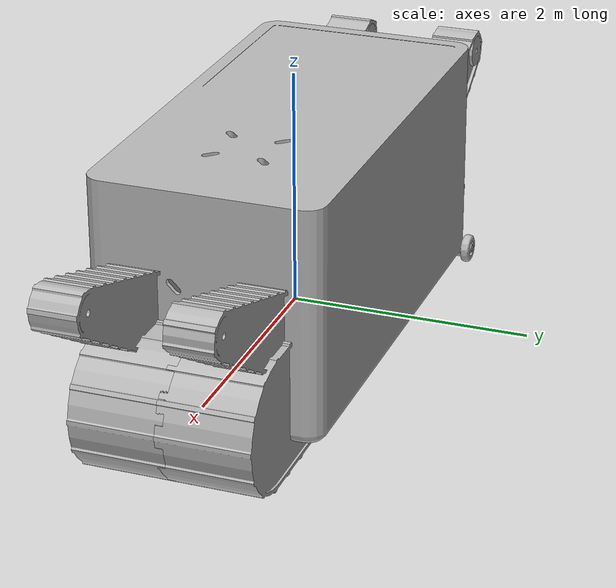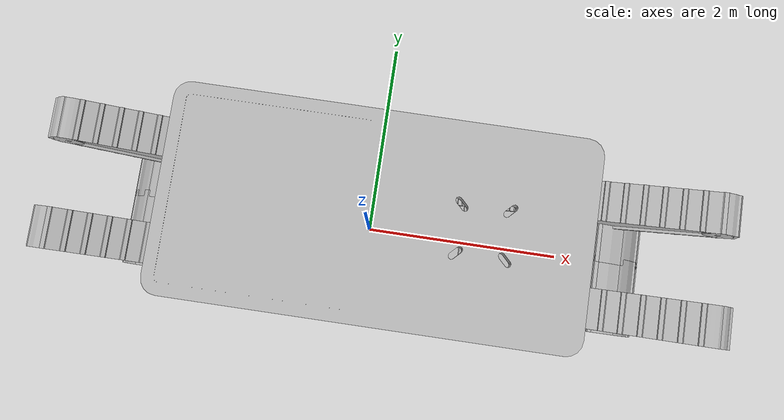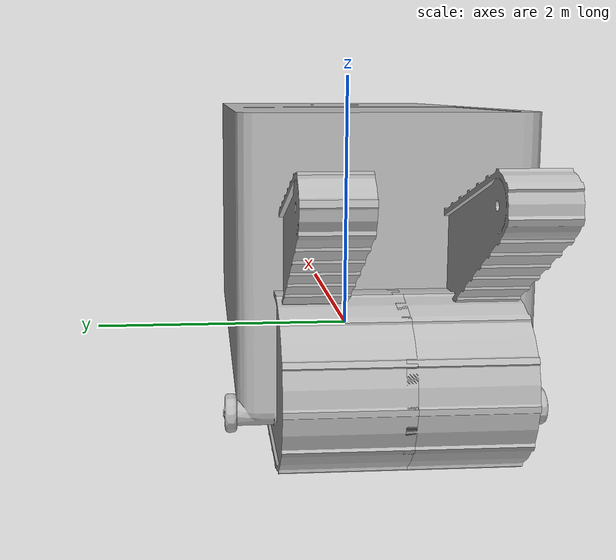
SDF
<?xml version='1.0'?>
<sdf version="1.4">
	<model name="sherpa_rover">
		<pose>0.0 0.0 0.0 0.0 0.0 0.0</pose>
		<static>false</static>
		<link name="main_body">
			<pose>0.0 0.0 0.0 0.0 0.0 0.0</pose>
			<visual name="Arm_Base_visual">
				<pose>0.39818906784057617 -4.3622790713016e-08 0.4064980745315552 0.0 0.0 0.0</pose>
				<geometry>
					<mesh><uri>model://sherpa_rover/meshes/Arm_Base.dae</uri></mesh>
				</geometry>
			</visual>
			<visual name="Arm_Part_1_visual">
				<pose>0.535822868347168 1.2957571016158909e-08 0.40686070919036865 0.0 -0.820505678653717 0.0</pose>
				<geometry>
					<mesh><uri>model://sherpa_rover/meshes/Arm_Part_1.dae</uri></mesh>
				</geometry>
			</visual>
			<visual name="Back_Left_Wheel_Ext_visual">
				<pose>0.6964254379272461 -0.5033063888549805 0.1422966718673706 -1.3159823453179342e-08 -0.4363322854042053 -5.984919226875718e-08</pose>
				<geometry>
					<mesh><uri>model://sherpa_rover/meshes/Loose_Wheel.dae</uri></mesh>
				</geometry>
			</visual>
			<visual name="Back_Right_Wheel_Ext_visual">
				<pose>0.6964254379272461 0.5033063888549805 0.1422966718673706 0.0 -2.705261468887329 3.1415939331054688</pose>
				<geometry>
					<mesh><uri>model://sherpa_rover/meshes/Loose_Wheel.dae</uri></mesh>
				</geometry>
			</visual>
			<visual name="Body_visual">
				<pose>0.004205834120512009 -8.124277428578353e-08 0.4054466485977173 0.0 0.0 0.0</pose>
				<geometry>
					<mesh><uri>model://sherpa_rover/meshes/Body.dae</uri></mesh>
				</geometry>
			</visual>
			<visual name="Box_visual">
				<pose>0.08009205758571625 -1.417444082107977e-07 0.7942018508911133 0.0 0.0 0.0</pose>
				<geometry>
					<mesh><uri>model://sherpa_rover/meshes/Box.dae</uri></mesh>
				</geometry>
			</visual>
			<visual name="Arm_Part_2_visual">
				<pose>0.9234867095947266 -5.9047138734058535e-08 0.879021167755127 0.0 -0.04619933292269707 0.0</pose>
				<geometry>
					<mesh><uri>model://sherpa_rover/meshes/Arm_Part_2.dae</uri></mesh>
				</geometry>
			</visual>
			<visual name="Arm_Gripper_visual">
				<pose>1.4311742782592773 -5.368058282329002e-07 0.912118673324585 2.5259792087867217e-12 -0.3323672115802765 4.1632947847903624e-16</pose>
				<geometry>
					<mesh><uri>model://sherpa_rover/meshes/Arm_Gripper.dae</uri></mesh>
				</geometry>
			</visual>
			<visual name="Front_Left_Wheel_Ext_visual">
				<pose>-0.34882116317749023 -0.5033063888549805 0.1422966718673706 0.0 -2.705261468887329 0.0</pose>
				<geometry>
					<mesh><uri>model://sherpa_rover/meshes/Loose_Wheel.dae</uri></mesh>
				</geometry>
			</visual>
			<visual name="Front_Right_Wheel_Ext_visual">
				<pose>-0.34882116317749023 0.5033063888549805 0.1422966718673706 0.0 -0.43633249402046204 3.1415939331054688</pose>
				<geometry>
					<mesh><uri>model://sherpa_rover/meshes/Loose_Wheel.dae</uri></mesh>
				</geometry>
			</visual>
			<visual name="Main_Wheel_Left_visual">
				<pose>0.16442573070526123 0.3477001190185547 0.14229679107666016 0.0 0.0 0.0</pose>
				<geometry>
					<mesh><uri>model://sherpa_rover/meshes/Main_Wheel.dae</uri></mesh>
				</geometry>
			</visual>
			<visual name="Main_Wheel_Right_visual">
				<pose>0.16442573070526123 -0.3477001190185547 0.14229679107666016 0.0 0.0 0.0</pose>
				<geometry>
					<mesh><uri>model://sherpa_rover/meshes/Main_Wheel.dae</uri></mesh>
				</geometry>
			</visual>
		</link>
		<link name="Back_Wheel_Left">
			<pose>0.6964254379272461 -0.3551374673843384 0.1422966718673706 1.570796251296997 2.220446049250313e-16 2.220445916901415e-16</pose>
			<visual name="Back_Wheel_Left_visual">
				<pose>0.0 0.0 0.0 0.0 0.0 0.0</pose>
				<geometry>
					<box><size>0 0 0</size></box>
				</geometry>
			</visual>
			<collision name="collision">
				<geometry>
					<cylinder><radius>0.125</radius><length>.125</length></cylinder>				</geometry>
			</collision>
		</link>
		<joint type="revolute" name="Back_Wheel_Left_JOINT">
			<pose>0.6964254379272461 -0.3551374673843384 0.1422966718673706 1.570796251296997 2.220446049250313e-16 2.220445916901415e-16</pose>
			<child>Back_Wheel_Left</child>
			<parent>main_body</parent>
			<axis>
				<xyz>0 1 0</xyz>
			</axis>
		</joint>
		<link name="Back_Wheel_Right">
			<pose>0.6964254379272461 0.3551374673843384 0.1422966718673706 -1.570796251296997 -2.220445916901415e-16 2.220445784552517e-16</pose>
			<visual name="Back_Wheel_Right_visual">
				<pose>0.0 0.0 0.0 0.0 0.0 0.0</pose>
				<geometry>
					<box><size>0 0 0</size></box>
				</geometry>
			</visual>
			<collision name="collision">
				<geometry>
					<cylinder><radius>0.125</radius><length>.125</length></cylinder>				</geometry>
			</collision>
		</link>
		<joint type="revolute" name="Back_Wheel_Right_JOINT">
			<pose>0.6964254379272461 0.3551374673843384 0.1422966718673706 -1.570796251296997 -2.220445916901415e-16 2.220445784552517e-16</pose>
			<child>Back_Wheel_Right</child>
			<parent>main_body</parent>
			<axis>
				<xyz>0 1 0</xyz>
			</axis>
		</joint>
		<link name="Front_Wheel_Left">
			<pose>-0.3414655923843384 -0.3551374673843384 0.1422966718673706 1.570796251296997 2.220446049250313e-16 2.220445916901415e-16</pose>
			<visual name="Front_Wheel_Left_visual">
				<pose>0.0 0.0 0.0 0.0 0.0 0.0</pose>
				<geometry>
					<box><size>0 0 0</size></box>
				</geometry>
			</visual>
			<collision name="collision">
				<geometry>
					<cylinder><radius>0.125</radius><length>.125</length></cylinder>				</geometry>
			</collision>
		</link>
		<joint type="revolute" name="Front_Wheel_Left_JOINT">
			<pose>-0.3414655923843384 -0.3551374673843384 0.1422966718673706 1.570796251296997 2.220446049250313e-16 2.220445916901415e-16</pose>
			<child>Front_Wheel_Left</child>
			<parent>main_body</parent>
			<axis>
				<xyz>0 1 0</xyz>
			</axis>
		</joint>
		<link name="Front_Wheel_Right">
			<pose>-0.3414655923843384 0.3551374673843384 0.1422966718673706 -1.570796251296997 -2.220445916901415e-16 2.220445784552517e-16</pose>
			<visual name="Front_Wheel_Right_visual">
				<pose>0.0 0.0 0.0 0.0 0.0 0.0</pose>
				<geometry>
					<box><size>0 0 0</size></box>
				</geometry>
			</visual>
			<collision name="collision">
				<geometry>
					<cylinder><radius>0.125</radius><length>.125</length></cylinder>				</geometry>
			</collision>
		</link>
		<joint type="revolute" name="Front_Wheel_Right_JOINT">
			<pose>-0.3414655923843384 0.3551374673843384 0.1422966718673706 -1.570796251296997 -2.220445916901415e-16 2.220445784552517e-16</pose>
			<child>Front_Wheel_Right</child>
			<parent>main_body</parent>
			<axis>
				<xyz>0 1 0</xyz>
			</axis>
		</joint>
	</model>
</sdf>
